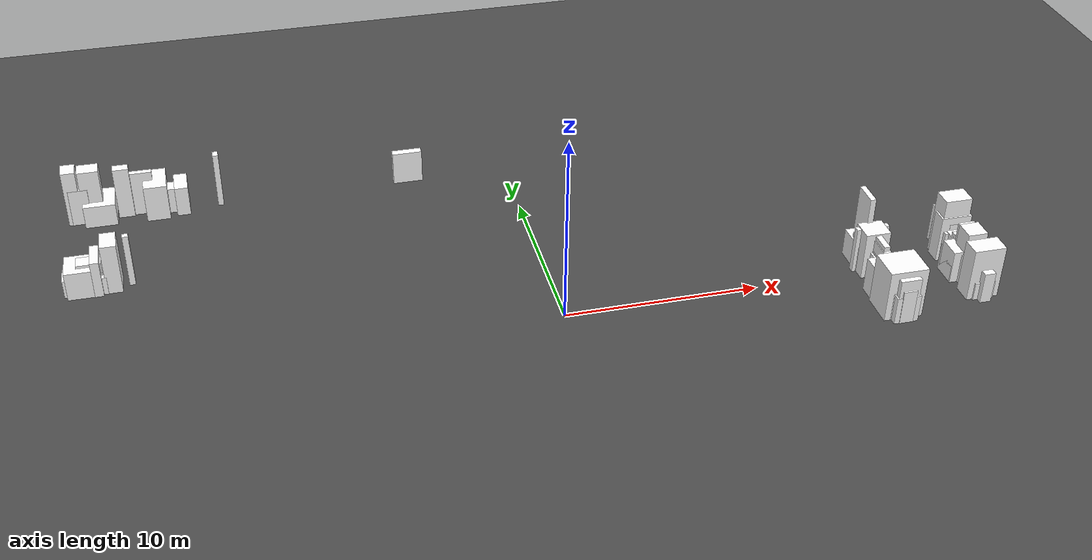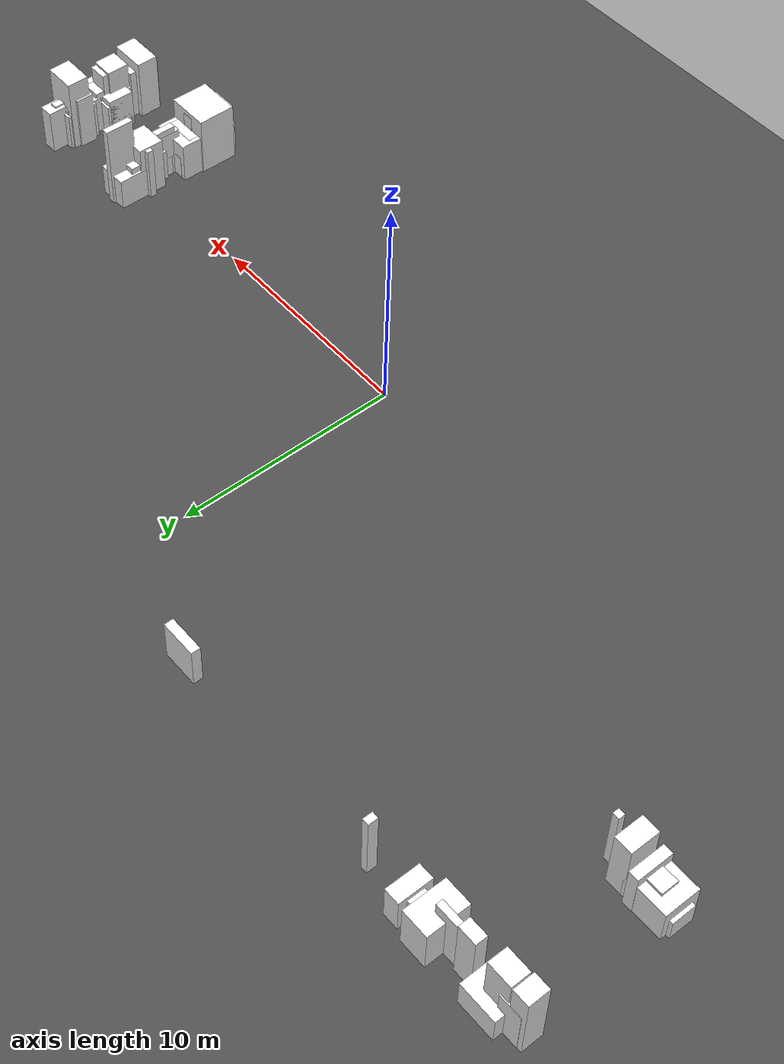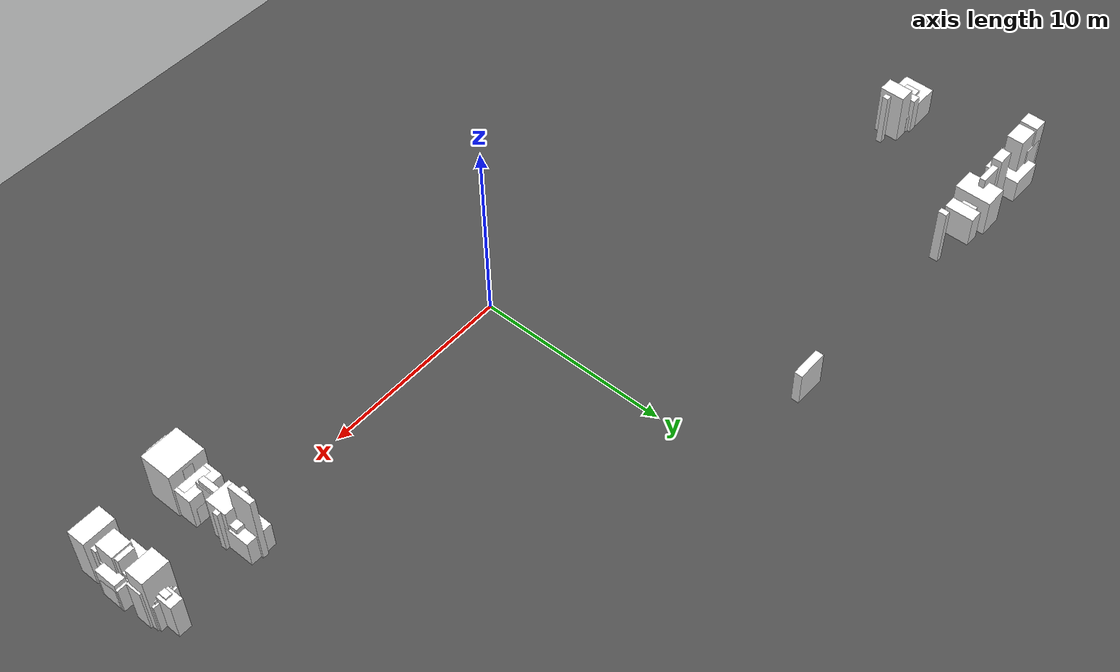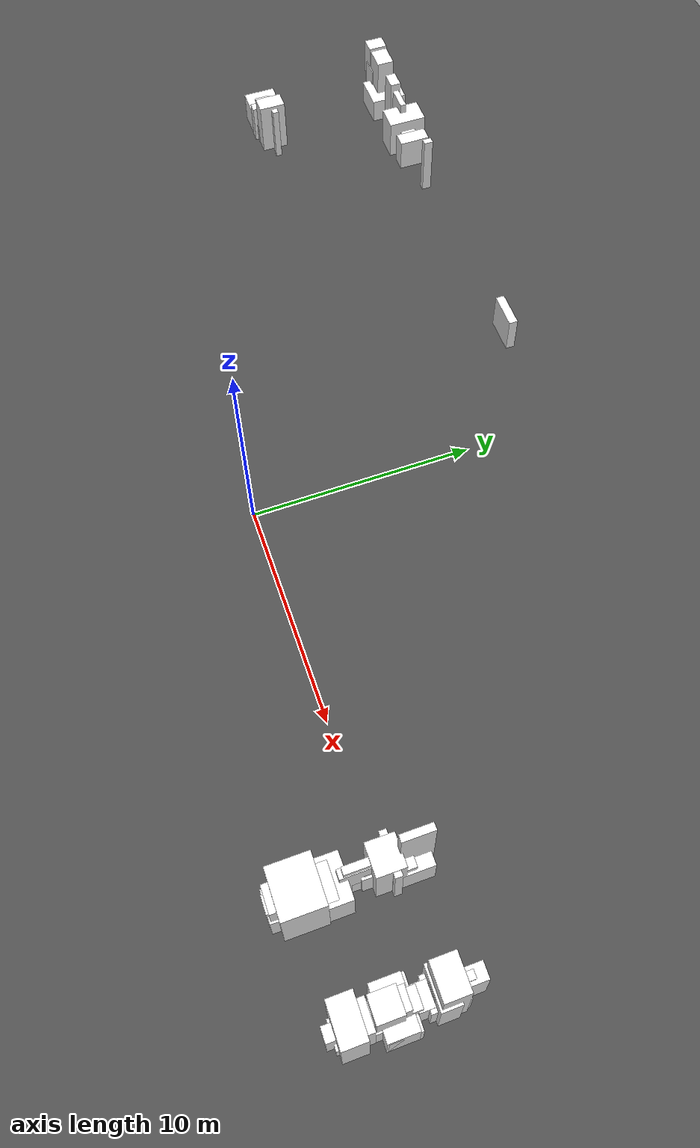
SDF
<sdf version="1.6">
 <world name="mirror_edge_world">
  <model name="ground_plane">
   <static>true</static>
   <link name="link">
    <collision name="collision">
     <geometry><plane><normal>0 0 1</normal><size>100 100</size></plane></geometry>
    </collision>
    <visual name="visual">
     <geometry><plane><normal>0 0 1</normal><size>100 100</size></plane></geometry>
     <material>
      <ambient>0.3 0.3 0.3 1</ambient>
      <diffuse>0.3 0.3 0.3 1</diffuse>
      <specular>0.5 0.5 0.5 1</specular>
      <emissive>0 0 0 1</emissive>
     </material>
    </visual>
   </link>
  </model>
  <model name="roadside_block_11_23_0">
   <static>true</static>
   <link name="link">
    <pose>16.21858560166542 -3.8042721957990326 1.2354776710088258 0 0 0</pose>
    <collision name="collision">
     <geometry><box><size>1.0804383255346321 0.9380740299507447 2.4709553420176515</size></box></geometry>
    </collision>
    <visual name="visual">
     <geometry><box><size>1.0804383255346321 0.9380740299507447 2.4709553420176515</size></box></geometry>
     <material>
      <ambient>1 1 1 1</ambient>
      <diffuse>1 1 1 1</diffuse>
      <specular>0.9 0.9 0.9 1</specular>
      <emissive>0.05 0.05 0.05 1</emissive>
     </material>
    </visual>
   </link>
  </model>
  <model name="roadside_block_11_24_0">
   <static>true</static>
   <link name="link">
    <pose>16.21858560166542 -3.7070666390946427 0.7494849608326297 0 0 0</pose>
    <collision name="collision">
     <geometry><box><size>1.2566096805619216 1.253627408943936 1.4989699216652594</size></box></geometry>
    </collision>
    <visual name="visual">
     <geometry><box><size>1.2566096805619216 1.253627408943936 1.4989699216652594</size></box></geometry>
     <material>
      <ambient>1 1 1 1</ambient>
      <diffuse>1 1 1 1</diffuse>
      <specular>0.9 0.9 0.9 1</specular>
      <emissive>0.05 0.05 0.05 1</emissive>
     </material>
    </visual>
   </link>
  </model>
  <model name="roadside_block_11_25_0">
   <static>true</static>
   <link name="link">
    <pose>16.21858560166542 -3.609861082390253 0.7923605078581774 0 0 0</pose>
    <collision name="collision">
     <geometry><box><size>1.357067128507238 0.7862899323994181 1.5847210157163547</size></box></geometry>
    </collision>
    <visual name="visual">
     <geometry><box><size>1.357067128507238 0.7862899323994181 1.5847210157163547</size></box></geometry>
     <material>
      <ambient>1 1 1 1</ambient>
      <diffuse>1 1 1 1</diffuse>
      <specular>0.9 0.9 0.9 1</specular>
      <emissive>0.05 0.05 0.05 1</emissive>
     </material>
    </visual>
   </link>
  </model>
  <model name="roadside_block_11_26_0">
   <static>true</static>
   <link name="link">
    <pose>16.21858560166542 -3.512655525685863 0.8416492146611939 0 0 0</pose>
    <collision name="collision">
     <geometry><box><size>0.6471163709494483 1.6538316001988216 1.6832984293223878</size></box></geometry>
    </collision>
    <visual name="visual">
     <geometry><box><size>0.6471163709494483 1.6538316001988216 1.6832984293223878</size></box></geometry>
     <material>
      <ambient>1 1 1 1</ambient>
      <diffuse>1 1 1 1</diffuse>
      <specular>0.9 0.9 0.9 1</specular>
      <emissive>0.05 0.05 0.05 1</emissive>
     </material>
    </visual>
   </link>
  </model>
  <model name="roadside_block_11_27_0">
   <static>true</static>
   <link name="link">
    <pose>16.21858560166542 -3.415449968981473 0.9345182304723844 0 0 0</pose>
    <collision name="collision">
     <geometry><box><size>0.7109434330954669 1.898828719705134 1.8690364609447687</size></box></geometry>
    </collision>
    <visual name="visual">
     <geometry><box><size>0.7109434330954669 1.898828719705134 1.8690364609447687</size></box></geometry>
     <material>
      <ambient>1 1 1 1</ambient>
      <diffuse>1 1 1 1</diffuse>
      <specular>0.9 0.9 0.9 1</specular>
      <emissive>0.05 0.05 0.05 1</emissive>
     </material>
    </visual>
   </link>
  </model>
  <model name="roadside_block_11_28_0">
   <static>true</static>
   <link name="link">
    <pose>20.818585601665422 -3.318244412277083 0.8557772017597238 0 0 0</pose>
    <collision name="collision">
     <geometry><box><size>0.5839366781183123 0.7733767131175638 1.7115544035194477</size></box></geometry>
    </collision>
    <visual name="visual">
     <geometry><box><size>0.5839366781183123 0.7733767131175638 1.7115544035194477</size></box></geometry>
     <material>
      <ambient>1 1 1 1</ambient>
      <diffuse>1 1 1 1</diffuse>
      <specular>0.9 0.9 0.9 1</specular>
      <emissive>0.05 0.05 0.05 1</emissive>
     </material>
    </visual>
   </link>
  </model>
  <model name="roadside_block_11_29_0">
   <static>true</static>
   <link name="link">
    <pose>16.21858560166542 -3.221038855572693 1.14578692937689 0 0 0</pose>
    <collision name="collision">
     <geometry><box><size>0.4324780692162977 0.4307867368732228 2.29157385875378</size></box></geometry>
    </collision>
    <visual name="visual">
     <geometry><box><size>0.4324780692162977 0.4307867368732228 2.29157385875378</size></box></geometry>
     <material>
      <ambient>1 1 1 1</ambient>
      <diffuse>1 1 1 1</diffuse>
      <specular>0.9 0.9 0.9 1</specular>
      <emissive>0.05 0.05 0.05 1</emissive>
     </material>
    </visual>
   </link>
  </model>
  <model name="roadside_block_11_30_0">
   <static>true</static>
   <link name="link">
    <pose>16.21858560166542 -3.1238332988683033 1.4040914641877587 0 0 0</pose>
    <collision name="collision">
     <geometry><box><size>2.0 1.7403846856171477 2.8081829283755173</size></box></geometry>
    </collision>
    <visual name="visual">
     <geometry><box><size>2.0 1.7403846856171477 2.8081829283755173</size></box></geometry>
     <material>
      <ambient>1 1 1 1</ambient>
      <diffuse>1 1 1 1</diffuse>
      <specular>0.9 0.9 0.9 1</specular>
      <emissive>0.05 0.05 0.05 1</emissive>
     </material>
    </visual>
   </link>
  </model>
  <model name="roadside_block_11_31_0">
   <static>true</static>
   <link name="link">
    <pose>16.21858560166542 -3.0266277421639134 0.7959984089615233 0 0 0</pose>
    <collision name="collision">
     <geometry><box><size>1.1524202615355628 1.7941158594726343 1.5919968179230466</size></box></geometry>
    </collision>
    <visual name="visual">
     <geometry><box><size>1.1524202615355628 1.7941158594726343 1.5919968179230466</size></box></geometry>
     <material>
      <ambient>1 1 1 1</ambient>
      <diffuse>1 1 1 1</diffuse>
      <specular>0.9 0.9 0.9 1</specular>
      <emissive>0.05 0.05 0.05 1</emissive>
     </material>
    </visual>
   </link>
  </model>
  <model name="roadside_block_11_32_0">
   <static>true</static>
   <link name="link">
    <pose>16.21858560166542 -2.9294221854595235 1.1548726224185946 0 0 0</pose>
    <collision name="collision">
     <geometry><box><size>0.3059989469436297 1.2173495158369434 2.309745244837189</size></box></geometry>
    </collision>
    <visual name="visual">
     <geometry><box><size>0.3059989469436297 1.2173495158369434 2.309745244837189</size></box></geometry>
     <material>
      <ambient>1 1 1 1</ambient>
      <diffuse>1 1 1 1</diffuse>
      <specular>0.9 0.9 0.9 1</specular>
      <emissive>0.05 0.05 0.05 1</emissive>
     </material>
    </visual>
   </link>
  </model>
  <model name="roadside_block_11_33_0">
   <static>true</static>
   <link name="link">
    <pose>20.818585601665422 -2.832216628755134 1.456429944601567 0 0 0</pose>
    <collision name="collision">
     <geometry><box><size>1.6827832994069434 0.9974993261907543 2.912859889203134</size></box></geometry>
    </collision>
    <visual name="visual">
     <geometry><box><size>1.6827832994069434 0.9974993261907543 2.912859889203134</size></box></geometry>
     <material>
      <ambient>1 1 1 1</ambient>
      <diffuse>1 1 1 1</diffuse>
      <specular>0.9 0.9 0.9 1</specular>
      <emissive>0.05 0.05 0.05 1</emissive>
     </material>
    </visual>
   </link>
  </model>
  <model name="roadside_block_11_34_0">
   <static>true</static>
   <link name="link">
    <pose>16.21858560166542 -2.735011072050744 1.2875831252718668 0 0 0</pose>
    <collision name="collision">
     <geometry><box><size>0.5504219417117358 0.972650114655825 2.5751662505437336</size></box></geometry>
    </collision>
    <visual name="visual">
     <geometry><box><size>0.5504219417117358 0.972650114655825 2.5751662505437336</size></box></geometry>
     <material>
      <ambient>1 1 1 1</ambient>
      <diffuse>1 1 1 1</diffuse>
      <specular>0.9 0.9 0.9 1</specular>
      <emissive>0.05 0.05 0.05 1</emissive>
     </material>
    </visual>
   </link>
  </model>
  <model name="roadside_block_11_35_0">
   <static>true</static>
   <link name="link">
    <pose>16.21858560166542 -2.637805515346354 0.6414252218439767 0 0 0</pose>
    <collision name="collision">
     <geometry><box><size>1.0966459840155058 1.1041415224890834 1.2828504436879533</size></box></geometry>
    </collision>
    <visual name="visual">
     <geometry><box><size>1.0966459840155058 1.1041415224890834 1.2828504436879533</size></box></geometry>
     <material>
      <ambient>1 1 1 1</ambient>
      <diffuse>1 1 1 1</diffuse>
      <specular>0.9 0.9 0.9 1</specular>
      <emissive>0.05 0.05 0.05 1</emissive>
     </material>
    </visual>
   </link>
  </model>
  <model name="roadside_block_11_36_0">
   <static>true</static>
   <link name="link">
    <pose>20.818585601665422 -2.5405999586419643 0.5 0 0 0</pose>
    <collision name="collision">
     <geometry><box><size>1.074506328080978 1.7734732638131128 1.0</size></box></geometry>
    </collision>
    <visual name="visual">
     <geometry><box><size>1.074506328080978 1.7734732638131128 1.0</size></box></geometry>
     <material>
      <ambient>1 1 1 1</ambient>
      <diffuse>1 1 1 1</diffuse>
      <specular>0.9 0.9 0.9 1</specular>
      <emissive>0.05 0.05 0.05 1</emissive>
     </material>
    </visual>
   </link>
  </model>
  <model name="roadside_block_11_37_0">
   <static>true</static>
   <link name="link">
    <pose>20.818585601665422 -2.4433944019375744 1.20310707098343 0 0 0</pose>
    <collision name="collision">
     <geometry><box><size>1.1962393467710064 0.8310265019209189 2.40621414196686</size></box></geometry>
    </collision>
    <visual name="visual">
     <geometry><box><size>1.1962393467710064 0.8310265019209189 2.40621414196686</size></box></geometry>
     <material>
      <ambient>1 1 1 1</ambient>
      <diffuse>1 1 1 1</diffuse>
      <specular>0.9 0.9 0.9 1</specular>
      <emissive>0.05 0.05 0.05 1</emissive>
     </material>
    </visual>
   </link>
  </model>
  <model name="roadside_block_11_38_0">
   <static>true</static>
   <link name="link">
    <pose>16.21858560166542 -2.3461888452331845 0.9445315884453709 0 0 0</pose>
    <collision name="collision">
     <geometry><box><size>1.4565003997006298 1.1285316262642253 1.8890631768907418</size></box></geometry>
    </collision>
    <visual name="visual">
     <geometry><box><size>1.4565003997006298 1.1285316262642253 1.8890631768907418</size></box></geometry>
     <material>
      <ambient>1 1 1 1</ambient>
      <diffuse>1 1 1 1</diffuse>
      <specular>0.9 0.9 0.9 1</specular>
      <emissive>0.05 0.05 0.05 1</emissive>
     </material>
    </visual>
   </link>
  </model>
  <model name="roadside_block_11_39_0">
   <static>true</static>
   <link name="link">
    <pose>16.21858560166542 -2.248983288528795 0.8008220165084177 0 0 0</pose>
    <collision name="collision">
     <geometry><box><size>1.0167351022014934 0.7252951615972039 1.6016440330168353</size></box></geometry>
    </collision>
    <visual name="visual">
     <geometry><box><size>1.0167351022014934 0.7252951615972039 1.6016440330168353</size></box></geometry>
     <material>
      <ambient>1 1 1 1</ambient>
      <diffuse>1 1 1 1</diffuse>
      <specular>0.9 0.9 0.9 1</specular>
      <emissive>0.05 0.05 0.05 1</emissive>
     </material>
    </visual>
   </link>
  </model>
  <model name="roadside_block_11_40_0">
   <static>true</static>
   <link name="link">
    <pose>20.818585601665422 -2.151777731824405 0.8291200903262613 0 0 0</pose>
    <collision name="collision">
     <geometry><box><size>1.1757893355211606 1.3252862159198375 1.6582401806525227</size></box></geometry>
    </collision>
    <visual name="visual">
     <geometry><box><size>1.1757893355211606 1.3252862159198375 1.6582401806525227</size></box></geometry>
     <material>
      <ambient>1 1 1 1</ambient>
      <diffuse>1 1 1 1</diffuse>
      <specular>0.9 0.9 0.9 1</specular>
      <emissive>0.05 0.05 0.05 1</emissive>
     </material>
    </visual>
   </link>
  </model>
  <model name="roadside_block_11_41_0">
   <static>true</static>
   <link name="link">
    <pose>16.21858560166542 -2.054572175120015 0.6288880494072719 0 0 0</pose>
    <collision name="collision">
     <geometry><box><size>1.361621135339547 1.5076984740565007 1.2577760988145439</size></box></geometry>
    </collision>
    <visual name="visual">
     <geometry><box><size>1.361621135339547 1.5076984740565007 1.2577760988145439</size></box></geometry>
     <material>
      <ambient>1 1 1 1</ambient>
      <diffuse>1 1 1 1</diffuse>
      <specular>0.9 0.9 0.9 1</specular>
      <emissive>0.05 0.05 0.05 1</emissive>
     </material>
    </visual>
   </link>
  </model>
  <model name="roadside_block_11_42_0">
   <static>true</static>
   <link name="link">
    <pose>16.21858560166542 -1.9573666184156249 0.5 0 0 0</pose>
    <collision name="collision">
     <geometry><box><size>1.5401907840674078 1.2464003070418586 1.0</size></box></geometry>
    </collision>
    <visual name="visual">
     <geometry><box><size>1.5401907840674078 1.2464003070418586 1.0</size></box></geometry>
     <material>
      <ambient>1 1 1 1</ambient>
      <diffuse>1 1 1 1</diffuse>
      <specular>0.9 0.9 0.9 1</specular>
      <emissive>0.05 0.05 0.05 1</emissive>
     </material>
    </visual>
   </link>
  </model>
  <model name="roadside_block_11_43_0">
   <static>true</static>
   <link name="link">
    <pose>16.21858560166542 -1.860161061711235 0.9433256060887353 0 0 0</pose>
    <collision name="collision">
     <geometry><box><size>1.8419199502368446 1.148775214889941 1.8866512121774706</size></box></geometry>
    </collision>
    <visual name="visual">
     <geometry><box><size>1.8419199502368446 1.148775214889941 1.8866512121774706</size></box></geometry>
     <material>
      <ambient>1 1 1 1</ambient>
      <diffuse>1 1 1 1</diffuse>
      <specular>0.9 0.9 0.9 1</specular>
      <emissive>0.05 0.05 0.05 1</emissive>
     </material>
    </visual>
   </link>
  </model>
  <model name="roadside_block_11_44_0">
   <static>true</static>
   <link name="link">
    <pose>16.21858560166542 -1.762955505006845 0.7001681256782317 0 0 0</pose>
    <collision name="collision">
     <geometry><box><size>1.4101555077290373 0.34521073572125605 1.4003362513564634</size></box></geometry>
    </collision>
    <visual name="visual">
     <geometry><box><size>1.4101555077290373 0.34521073572125605 1.4003362513564634</size></box></geometry>
     <material>
      <ambient>1 1 1 1</ambient>
      <diffuse>1 1 1 1</diffuse>
      <specular>0.9 0.9 0.9 1</specular>
      <emissive>0.05 0.05 0.05 1</emissive>
     </material>
    </visual>
   </link>
  </model>
  <model name="roadside_block_11_45_0">
   <static>true</static>
   <link name="link">
    <pose>20.818585601665422 -1.6657499483024552 1.1940528141234268 0 0 0</pose>
    <collision name="collision">
     <geometry><box><size>0.7845501736091486 1.1325581068450046 2.3881056282468536</size></box></geometry>
    </collision>
    <visual name="visual">
     <geometry><box><size>0.7845501736091486 1.1325581068450046 2.3881056282468536</size></box></geometry>
     <material>
      <ambient>1 1 1 1</ambient>
      <diffuse>1 1 1 1</diffuse>
      <specular>0.9 0.9 0.9 1</specular>
      <emissive>0.05 0.05 0.05 1</emissive>
     </material>
    </visual>
   </link>
  </model>
  <model name="roadside_block_11_46_0">
   <static>true</static>
   <link name="link">
    <pose>16.21858560166542 -1.5685443915980652 0.5499318706216594 0 0 0</pose>
    <collision name="collision">
     <geometry><box><size>1.3853635678319103 0.5794063809413218 1.0998637412433188</size></box></geometry>
    </collision>
    <visual name="visual">
     <geometry><box><size>1.3853635678319103 0.5794063809413218 1.0998637412433188</size></box></geometry>
     <material>
      <ambient>1 1 1 1</ambient>
      <diffuse>1 1 1 1</diffuse>
      <specular>0.9 0.9 0.9 1</specular>
      <emissive>0.05 0.05 0.05 1</emissive>
     </material>
    </visual>
   </link>
  </model>
  <model name="roadside_block_11_47_0">
   <static>true</static>
   <link name="link">
    <pose>20.818585601665422 -1.4713388348936753 1.474028276307581 0 0 0</pose>
    <collision name="collision">
     <geometry><box><size>1.0306009427699054 1.044322299443246 2.948056552615162</size></box></geometry>
    </collision>
    <visual name="visual">
     <geometry><box><size>1.0306009427699054 1.044322299443246 2.948056552615162</size></box></geometry>
     <material>
      <ambient>1 1 1 1</ambient>
      <diffuse>1 1 1 1</diffuse>
      <specular>0.9 0.9 0.9 1</specular>
      <emissive>0.05 0.05 0.05 1</emissive>
     </material>
    </visual>
   </link>
  </model>
  <model name="roadside_block_11_48_0">
   <static>true</static>
   <link name="link">
    <pose>20.818585601665422 -1.3741332781892854 1.2104525801692927 0 0 0</pose>
    <collision name="collision">
     <geometry><box><size>0.9467513110616417 0.45638956339080616 2.4209051603385854</size></box></geometry>
    </collision>
    <visual name="visual">
     <geometry><box><size>0.9467513110616417 0.45638956339080616 2.4209051603385854</size></box></geometry>
     <material>
      <ambient>1 1 1 1</ambient>
      <diffuse>1 1 1 1</diffuse>
      <specular>0.9 0.9 0.9 1</specular>
      <emissive>0.05 0.05 0.05 1</emissive>
     </material>
    </visual>
   </link>
  </model>
  <model name="roadside_block_11_49_0">
   <static>true</static>
   <link name="link">
    <pose>20.818585601665422 -1.2769277214848955 1.4229457023785301 0 0 0</pose>
    <collision name="collision">
     <geometry><box><size>0.8698458738253947 1.1780018850447032 2.8458914047570603</size></box></geometry>
    </collision>
    <visual name="visual">
     <geometry><box><size>0.8698458738253947 1.1780018850447032 2.8458914047570603</size></box></geometry>
     <material>
      <ambient>1 1 1 1</ambient>
      <diffuse>1 1 1 1</diffuse>
      <specular>0.9 0.9 0.9 1</specular>
      <emissive>0.05 0.05 0.05 1</emissive>
     </material>
    </visual>
   </link>
  </model>
  <model name="roadside_block_11_50_0">
   <static>true</static>
   <link name="link">
    <pose>20.818585601665422 -1.1797221647805056 0.9009633119171858 0 0 0</pose>
    <collision name="collision">
     <geometry><box><size>2.0 1.214876194302211 1.8019266238343716</size></box></geometry>
    </collision>
    <visual name="visual">
     <geometry><box><size>2.0 1.214876194302211 1.8019266238343716</size></box></geometry>
     <material>
      <ambient>1 1 1 1</ambient>
      <diffuse>1 1 1 1</diffuse>
      <specular>0.9 0.9 0.9 1</specular>
      <emissive>0.05 0.05 0.05 1</emissive>
     </material>
    </visual>
   </link>
  </model>
  <model name="roadside_block_11_51_0">
   <static>true</static>
   <link name="link">
    <pose>20.818585601665422 -1.0825166080761157 0.7681147475246617 0 0 0</pose>
    <collision name="collision">
     <geometry><box><size>2.0 1.258964932109746 1.5362294950493234</size></box></geometry>
    </collision>
    <visual name="visual">
     <geometry><box><size>2.0 1.258964932109746 1.5362294950493234</size></box></geometry>
     <material>
      <ambient>1 1 1 1</ambient>
      <diffuse>1 1 1 1</diffuse>
      <specular>0.9 0.9 0.9 1</specular>
      <emissive>0.05 0.05 0.05 1</emissive>
     </material>
    </visual>
   </link>
  </model>
  <model name="roadside_block_11_52_0">
   <static>true</static>
   <link name="link">
    <pose>16.21858560166542 -0.9853110513717258 1.1343824983017283 0 0 0</pose>
    <collision name="collision">
     <geometry><box><size>0.38752254493946636 1.2564450880429117 2.2687649966034567</size></box></geometry>
    </collision>
    <visual name="visual">
     <geometry><box><size>0.38752254493946636 1.2564450880429117 2.2687649966034567</size></box></geometry>
     <material>
      <ambient>1 1 1 1</ambient>
      <diffuse>1 1 1 1</diffuse>
      <specular>0.9 0.9 0.9 1</specular>
      <emissive>0.05 0.05 0.05 1</emissive>
     </material>
    </visual>
   </link>
  </model>
  <model name="roadside_block_11_53_0">
   <static>true</static>
   <link name="link">
    <pose>16.21858560166542 -0.8881054946673359 1.2608820504628435 0 0 0</pose>
    <collision name="collision">
     <geometry><box><size>0.31506646615079703 1.0971406775773689 2.521764100925687</size></box></geometry>
    </collision>
    <visual name="visual">
     <geometry><box><size>0.31506646615079703 1.0971406775773689 2.521764100925687</size></box></geometry>
     <material>
      <ambient>1 1 1 1</ambient>
      <diffuse>1 1 1 1</diffuse>
      <specular>0.9 0.9 0.9 1</specular>
      <emissive>0.05 0.05 0.05 1</emissive>
     </material>
    </visual>
   </link>
  </model>
  <model name="roadside_block_11_54_0">
   <static>true</static>
   <link name="link">
    <pose>20.818585601665422 -0.790899937962946 1.0202642540902345 0 0 0</pose>
    <collision name="collision">
     <geometry><box><size>0.8398503556246228 1.0336615999307308 2.040528508180469</size></box></geometry>
    </collision>
    <visual name="visual">
     <geometry><box><size>0.8398503556246228 1.0336615999307308 2.040528508180469</size></box></geometry>
     <material>
      <ambient>1 1 1 1</ambient>
      <diffuse>1 1 1 1</diffuse>
      <specular>0.9 0.9 0.9 1</specular>
      <emissive>0.05 0.05 0.05 1</emissive>
     </material>
    </visual>
   </link>
  </model>
  <model name="roadside_block_11_55_0">
   <static>true</static>
   <link name="link">
    <pose>20.818585601665422 -0.6936943812585561 0.5 0 0 0</pose>
    <collision name="collision">
     <geometry><box><size>1.1065928170085766 0.4679383696940187 1.0</size></box></geometry>
    </collision>
    <visual name="visual">
     <geometry><box><size>1.1065928170085766 0.4679383696940187 1.0</size></box></geometry>
     <material>
      <ambient>1 1 1 1</ambient>
      <diffuse>1 1 1 1</diffuse>
      <specular>0.9 0.9 0.9 1</specular>
      <emissive>0.05 0.05 0.05 1</emissive>
     </material>
    </visual>
   </link>
  </model>
  <model name="roadside_block_11_56_0">
   <static>true</static>
   <link name="link">
    <pose>20.818585601665422 -0.5964888245541662 0.6788591452873509 0 0 0</pose>
    <collision name="collision">
     <geometry><box><size>0.6368093129406546 1.2910140063408388 1.3577182905747018</size></box></geometry>
    </collision>
    <visual name="visual">
     <geometry><box><size>0.6368093129406546 1.2910140063408388 1.3577182905747018</size></box></geometry>
     <material>
      <ambient>1 1 1 1</ambient>
      <diffuse>1 1 1 1</diffuse>
      <specular>0.9 0.9 0.9 1</specular>
      <emissive>0.05 0.05 0.05 1</emissive>
     </material>
    </visual>
   </link>
  </model>
  <model name="roadside_block_11_57_0">
   <static>true</static>
   <link name="link">
    <pose>16.21858560166542 -0.4992832678497763 0.5 0 0 0</pose>
    <collision name="collision">
     <geometry><box><size>0.43042650844551167 1.3239174162525633 1.0</size></box></geometry>
    </collision>
    <visual name="visual">
     <geometry><box><size>0.43042650844551167 1.3239174162525633 1.0</size></box></geometry>
     <material>
      <ambient>1 1 1 1</ambient>
      <diffuse>1 1 1 1</diffuse>
      <specular>0.9 0.9 0.9 1</specular>
      <emissive>0.05 0.05 0.05 1</emissive>
     </material>
    </visual>
   </link>
  </model>
  <model name="roadside_block_11_58_0">
   <static>true</static>
   <link name="link">
    <pose>16.21858560166542 -0.4020777111453864 0.7590815441983862 0 0 0</pose>
    <collision name="collision">
     <geometry><box><size>0.6257365097982756 0.8234516915402699 1.5181630883967725</size></box></geometry>
    </collision>
    <visual name="visual">
     <geometry><box><size>0.6257365097982756 0.8234516915402699 1.5181630883967725</size></box></geometry>
     <material>
      <ambient>1 1 1 1</ambient>
      <diffuse>1 1 1 1</diffuse>
      <specular>0.9 0.9 0.9 1</specular>
      <emissive>0.05 0.05 0.05 1</emissive>
     </material>
    </visual>
   </link>
  </model>
  <model name="roadside_block_11_59_0">
   <static>true</static>
   <link name="link">
    <pose>16.21858560166542 -0.30487215444099647 0.8156813411455033 0 0 0</pose>
    <collision name="collision">
     <geometry><box><size>0.4194312847417263 0.7509415455575364 1.6313626822910066</size></box></geometry>
    </collision>
    <visual name="visual">
     <geometry><box><size>0.4194312847417263 0.7509415455575364 1.6313626822910066</size></box></geometry>
     <material>
      <ambient>1 1 1 1</ambient>
      <diffuse>1 1 1 1</diffuse>
      <specular>0.9 0.9 0.9 1</specular>
      <emissive>0.05 0.05 0.05 1</emissive>
     </material>
    </visual>
   </link>
  </model>
  <model name="roadside_block_11_61_0">
   <static>true</static>
   <link name="link">
    <pose>16.21858560166542 -0.11046104103221666 1.2011314143291347 0 0 0</pose>
    <collision name="collision">
     <geometry><box><size>1.1049553720451875 0.32027173291392586 2.4022628286582695</size></box></geometry>
    </collision>
    <visual name="visual">
     <geometry><box><size>1.1049553720451875 0.32027173291392586 2.4022628286582695</size></box></geometry>
     <material>
      <ambient>1 1 1 1</ambient>
      <diffuse>1 1 1 1</diffuse>
      <specular>0.9 0.9 0.9 1</specular>
      <emissive>0.05 0.05 0.05 1</emissive>
     </material>
    </visual>
   </link>
  </model>
  <model name="roadside_block_11_63_0">
   <static>true</static>
   <link name="link">
    <pose>20.818585601665422 0.08395007237656316 0.9069502766455304 0 0 0</pose>
    <collision name="collision">
     <geometry><box><size>0.955844604685822 1.079599583906166 1.8139005532910608</size></box></geometry>
    </collision>
    <visual name="visual">
     <geometry><box><size>0.955844604685822 1.079599583906166 1.8139005532910608</size></box></geometry>
     <material>
      <ambient>1 1 1 1</ambient>
      <diffuse>1 1 1 1</diffuse>
      <specular>0.9 0.9 0.9 1</specular>
      <emissive>0.05 0.05 0.05 1</emissive>
     </material>
    </visual>
   </link>
  </model>
  <model name="roadside_block_11_64_0">
   <static>true</static>
   <link name="link">
    <pose>16.21858560166542 0.18115562908095306 1.3021638064930712 0 0 0</pose>
    <collision name="collision">
     <geometry><box><size>1.3160044120019492 1.1815423875015443 2.6043276129861423</size></box></geometry>
    </collision>
    <visual name="visual">
     <geometry><box><size>1.3160044120019492 1.1815423875015443 2.6043276129861423</size></box></geometry>
     <material>
      <ambient>1 1 1 1</ambient>
      <diffuse>1 1 1 1</diffuse>
      <specular>0.9 0.9 0.9 1</specular>
      <emissive>0.05 0.05 0.05 1</emissive>
     </material>
    </visual>
   </link>
  </model>
  <model name="roadside_block_11_65_0">
   <static>true</static>
   <link name="link">
    <pose>16.21858560166542 0.2783611857853421 0.9336595567416552 0 0 0</pose>
    <collision name="collision">
     <geometry><box><size>0.3 0.8043654714000956 1.8673191134833105</size></box></geometry>
    </collision>
    <visual name="visual">
     <geometry><box><size>0.3 0.8043654714000956 1.8673191134833105</size></box></geometry>
     <material>
      <ambient>1 1 1 1</ambient>
      <diffuse>1 1 1 1</diffuse>
      <specular>0.9 0.9 0.9 1</specular>
      <emissive>0.05 0.05 0.05 1</emissive>
     </material>
    </visual>
   </link>
  </model>
  <model name="roadside_block_11_66_0">
   <static>true</static>
   <link name="link">
    <pose>16.21858560166542 0.375566742489732 1.2767226141278485 0 0 0</pose>
    <collision name="collision">
     <geometry><box><size>1.7457121884745082 0.3 2.553445228255697</size></box></geometry>
    </collision>
    <visual name="visual">
     <geometry><box><size>1.7457121884745082 0.3 2.553445228255697</size></box></geometry>
     <material>
      <ambient>1 1 1 1</ambient>
      <diffuse>1 1 1 1</diffuse>
      <specular>0.9 0.9 0.9 1</specular>
      <emissive>0.05 0.05 0.05 1</emissive>
     </material>
    </visual>
   </link>
  </model>
  <model name="roadside_block_11_68_0">
   <static>true</static>
   <link name="link">
    <pose>20.818585601665422 0.5699778558985118 1.2835881037445593 0 0 0</pose>
    <collision name="collision">
     <geometry><box><size>1.6349404695969623 0.8179685326841102 2.5671762074891187</size></box></geometry>
    </collision>
    <visual name="visual">
     <geometry><box><size>1.6349404695969623 0.8179685326841102 2.5671762074891187</size></box></geometry>
     <material>
      <ambient>1 1 1 1</ambient>
      <diffuse>1 1 1 1</diffuse>
      <specular>0.9 0.9 0.9 1</specular>
      <emissive>0.05 0.05 0.05 1</emissive>
     </material>
    </visual>
   </link>
  </model>
  <model name="roadside_block_11_69_0">
   <static>true</static>
   <link name="link">
    <pose>20.818585601665422 0.6671834126029017 0.8887245839790763 0 0 0</pose>
    <collision name="collision">
     <geometry><box><size>1.2973061995187647 1.4856134811828343 1.7774491679581526</size></box></geometry>
    </collision>
    <visual name="visual">
     <geometry><box><size>1.2973061995187647 1.4856134811828343 1.7774491679581526</size></box></geometry>
     <material>
      <ambient>1 1 1 1</ambient>
      <diffuse>1 1 1 1</diffuse>
      <specular>0.9 0.9 0.9 1</specular>
      <emissive>0.05 0.05 0.05 1</emissive>
     </material>
    </visual>
   </link>
  </model>
  <model name="roadside_block_11_70_0">
   <static>true</static>
   <link name="link">
    <pose>20.818585601665422 0.7643889693072916 1.7713288382147159 0 0 0</pose>
    <collision name="collision">
     <geometry><box><size>1.4340648657903954 1.0272509199889823 3.5426576764294317</size></box></geometry>
    </collision>
    <visual name="visual">
     <geometry><box><size>1.4340648657903954 1.0272509199889823 3.5426576764294317</size></box></geometry>
     <material>
      <ambient>1 1 1 1</ambient>
      <diffuse>1 1 1 1</diffuse>
      <specular>0.9 0.9 0.9 1</specular>
      <emissive>0.05 0.05 0.05 1</emissive>
     </material>
    </visual>
   </link>
  </model>
  <model name="roadside_block_11_71_0">
   <static>true</static>
   <link name="link">
    <pose>16.21858560166542 0.8615945260116815 0.8913398000662193 0 0 0</pose>
    <collision name="collision">
     <geometry><box><size>1.1560198875459444 0.6722310811427981 1.7826796001324385</size></box></geometry>
    </collision>
    <visual name="visual">
     <geometry><box><size>1.1560198875459444 0.6722310811427981 1.7826796001324385</size></box></geometry>
     <material>
      <ambient>1 1 1 1</ambient>
      <diffuse>1 1 1 1</diffuse>
      <specular>0.9 0.9 0.9 1</specular>
      <emissive>0.05 0.05 0.05 1</emissive>
     </material>
    </visual>
   </link>
  </model>
  <model name="roadside_block_11_72_0">
   <static>true</static>
   <link name="link">
    <pose>20.818585601665422 0.9588000827160714 0.9757204784784276 0 0 0</pose>
    <collision name="collision">
     <geometry><box><size>0.956266630867723 0.7200342496897435 1.9514409569568552</size></box></geometry>
    </collision>
    <visual name="visual">
     <geometry><box><size>0.956266630867723 0.7200342496897435 1.9514409569568552</size></box></geometry>
     <material>
      <ambient>1 1 1 1</ambient>
      <diffuse>1 1 1 1</diffuse>
      <specular>0.9 0.9 0.9 1</specular>
      <emissive>0.05 0.05 0.05 1</emissive>
     </material>
    </visual>
   </link>
  </model>
  <model name="roadside_block_11_73_0">
   <static>true</static>
   <link name="link">
    <pose>16.21858560166542 1.0560056394204613 0.7489279440512299 0 0 0</pose>
    <collision name="collision">
     <geometry><box><size>1.3720931225657185 1.671064296398359 1.4978558881024597</size></box></geometry>
    </collision>
    <visual name="visual">
     <geometry><box><size>1.3720931225657185 1.671064296398359 1.4978558881024597</size></box></geometry>
     <material>
      <ambient>1 1 1 1</ambient>
      <diffuse>1 1 1 1</diffuse>
      <specular>0.9 0.9 0.9 1</specular>
      <emissive>0.05 0.05 0.05 1</emissive>
     </material>
    </visual>
   </link>
  </model>
  <model name="roadside_block_11_74_0">
   <static>true</static>
   <link name="link">
    <pose>20.818585601665422 1.1532111961248512 1.0723606689665597 0 0 0</pose>
    <collision name="collision">
     <geometry><box><size>0.6564186512125905 2.0 2.1447213379331194</size></box></geometry>
    </collision>
    <visual name="visual">
     <geometry><box><size>0.6564186512125905 2.0 2.1447213379331194</size></box></geometry>
     <material>
      <ambient>1 1 1 1</ambient>
      <diffuse>1 1 1 1</diffuse>
      <specular>0.9 0.9 0.9 1</specular>
      <emissive>0.05 0.05 0.05 1</emissive>
     </material>
    </visual>
   </link>
  </model>
  <model name="roadside_block_11_75_0">
   <static>true</static>
   <link name="link">
    <pose>20.818585601665422 1.2504167528292411 1.1161934612292521 0 0 0</pose>
    <collision name="collision">
     <geometry><box><size>0.338798843456662 0.9421566652583171 2.2323869224585042</size></box></geometry>
    </collision>
    <visual name="visual">
     <geometry><box><size>0.338798843456662 0.9421566652583171 2.2323869224585042</size></box></geometry>
     <material>
      <ambient>1 1 1 1</ambient>
      <diffuse>1 1 1 1</diffuse>
      <specular>0.9 0.9 0.9 1</specular>
      <emissive>0.05 0.05 0.05 1</emissive>
     </material>
    </visual>
   </link>
  </model>
  <model name="roadside_block_11_76_0">
   <static>true</static>
   <link name="link">
    <pose>16.21858560166542 1.347622309533631 1.9953646436473402 0 0 0</pose>
    <collision name="collision">
     <geometry><box><size>0.3 1.320590482030325 3.9907292872946805</size></box></geometry>
    </collision>
    <visual name="visual">
     <geometry><box><size>0.3 1.320590482030325 3.9907292872946805</size></box></geometry>
     <material>
      <ambient>1 1 1 1</ambient>
      <diffuse>1 1 1 1</diffuse>
      <specular>0.9 0.9 0.9 1</specular>
      <emissive>0.05 0.05 0.05 1</emissive>
     </material>
    </visual>
   </link>
  </model>
  <model name="roadside_block_12_5_0">
   <static>true</static>
   <link name="link">
    <pose>-23.495211770798317 7.586421523255507 0.5 0 0 0</pose>
    <collision name="collision">
     <geometry><box><size>1.459330837982733 1.0765147085961946 1.0</size></box></geometry>
    </collision>
    <visual name="visual">
     <geometry><box><size>1.459330837982733 1.0765147085961946 1.0</size></box></geometry>
     <material>
      <ambient>1 1 1 1</ambient>
      <diffuse>1 1 1 1</diffuse>
      <specular>0.9 0.9 0.9 1</specular>
      <emissive>0.05 0.05 0.05 1</emissive>
     </material>
    </visual>
   </link>
  </model>
  <model name="roadside_block_12_6_0">
   <static>true</static>
   <link name="link">
    <pose>-23.38505412495798 7.586421523255507 0.7878965938312608 0 0 0</pose>
    <collision name="collision">
     <geometry><box><size>1.357422525383527 1.5868311508308477 1.5757931876625215</size></box></geometry>
    </collision>
    <visual name="visual">
     <geometry><box><size>1.357422525383527 1.5868311508308477 1.5757931876625215</size></box></geometry>
     <material>
      <ambient>1 1 1 1</ambient>
      <diffuse>1 1 1 1</diffuse>
      <specular>0.9 0.9 0.9 1</specular>
      <emissive>0.05 0.05 0.05 1</emissive>
     </material>
    </visual>
   </link>
  </model>
  <model name="roadside_block_12_11_0">
   <static>true</static>
   <link name="link">
    <pose>-22.834265895756296 7.586421523255507 0.8596566547225452 0 0 0</pose>
    <collision name="collision">
     <geometry><box><size>1.243570438678405 0.7613217961878684 1.7193133094450903</size></box></geometry>
    </collision>
    <visual name="visual">
     <geometry><box><size>1.243570438678405 0.7613217961878684 1.7193133094450903</size></box></geometry>
     <material>
      <ambient>1 1 1 1</ambient>
      <diffuse>1 1 1 1</diffuse>
      <specular>0.9 0.9 0.9 1</specular>
      <emissive>0.05 0.05 0.05 1</emissive>
     </material>
    </visual>
   </link>
  </model>
  <model name="roadside_block_12_14_0">
   <static>true</static>
   <link name="link">
    <pose>-22.503792958235287 7.586421523255507 1.0246062046800186 0 0 0</pose>
    <collision name="collision">
     <geometry><box><size>0.449629038418772 1.6194477921345507 2.0492124093600372</size></box></geometry>
    </collision>
    <visual name="visual">
     <geometry><box><size>0.449629038418772 1.6194477921345507 2.0492124093600372</size></box></geometry>
     <material>
      <ambient>1 1 1 1</ambient>
      <diffuse>1 1 1 1</diffuse>
      <specular>0.9 0.9 0.9 1</specular>
      <emissive>0.05 0.05 0.05 1</emissive>
     </material>
    </visual>
   </link>
  </model>
  <model name="roadside_block_12_15_0">
   <static>true</static>
   <link name="link">
    <pose>-22.393635312394952 7.586421523255507 0.7481725113589546 0 0 0</pose>
    <collision name="collision">
     <geometry><box><size>1.4745779721608567 0.7480021912808994 1.4963450227179091</size></box></geometry>
    </collision>
    <visual name="visual">
     <geometry><box><size>1.4745779721608567 0.7480021912808994 1.4963450227179091</size></box></geometry>
     <material>
      <ambient>1 1 1 1</ambient>
      <diffuse>1 1 1 1</diffuse>
      <specular>0.9 0.9 0.9 1</specular>
      <emissive>0.05 0.05 0.05 1</emissive>
     </material>
    </visual>
   </link>
  </model>
  <model name="roadside_block_12_16_0">
   <static>true</static>
   <link name="link">
    <pose>-22.283477666554614 7.586421523255507 0.5 0 0 0</pose>
    <collision name="collision">
     <geometry><box><size>0.47574303012581587 1.3298032450616455 1.0</size></box></geometry>
    </collision>
    <visual name="visual">
     <geometry><box><size>0.47574303012581587 1.3298032450616455 1.0</size></box></geometry>
     <material>
      <ambient>1 1 1 1</ambient>
      <diffuse>1 1 1 1</diffuse>
      <specular>0.9 0.9 0.9 1</specular>
      <emissive>0.05 0.05 0.05 1</emissive>
     </material>
    </visual>
   </link>
  </model>
  <model name="roadside_block_12_17_0">
   <static>true</static>
   <link name="link">
    <pose>-22.17332002071428 7.586421523255507 0.5 0 0 0</pose>
    <collision name="collision">
     <geometry><box><size>0.7015942460795814 0.5254252629710627 1.0</size></box></geometry>
    </collision>
    <visual name="visual">
     <geometry><box><size>0.7015942460795814 0.5254252629710627 1.0</size></box></geometry>
     <material>
      <ambient>1 1 1 1</ambient>
      <diffuse>1 1 1 1</diffuse>
      <specular>0.9 0.9 0.9 1</specular>
      <emissive>0.05 0.05 0.05 1</emissive>
     </material>
    </visual>
   </link>
  </model>
  <model name="roadside_block_12_18_0">
   <static>true</static>
   <link name="link">
    <pose>-22.06316237487394 7.586421523255507 0.5279685935675669 0 0 0</pose>
    <collision name="collision">
     <geometry><box><size>0.33322476259581457 0.5627159872988099 1.0559371871351337</size></box></geometry>
    </collision>
    <visual name="visual">
     <geometry><box><size>0.33322476259581457 0.5627159872988099 1.0559371871351337</size></box></geometry>
     <material>
      <ambient>1 1 1 1</ambient>
      <diffuse>1 1 1 1</diffuse>
      <specular>0.9 0.9 0.9 1</specular>
      <emissive>0.05 0.05 0.05 1</emissive>
     </material>
    </visual>
   </link>
  </model>
  <model name="roadside_block_12_21_0">
   <static>true</static>
   <link name="link">
    <pose>-21.73268943735293 7.586421523255507 1.411031266441013 0 0 0</pose>
    <collision name="collision">
     <geometry><box><size>0.8130068265040482 1.3050370158539795 2.822062532882026</size></box></geometry>
    </collision>
    <visual name="visual">
     <geometry><box><size>0.8130068265040482 1.3050370158539795 2.822062532882026</size></box></geometry>
     <material>
      <ambient>1 1 1 1</ambient>
      <diffuse>1 1 1 1</diffuse>
      <specular>0.9 0.9 0.9 1</specular>
      <emissive>0.05 0.05 0.05 1</emissive>
     </material>
    </visual>
   </link>
  </model>
  <model name="roadside_block_12_29_0">
   <static>true</static>
   <link name="link">
    <pose>-20.851428270630237 7.586421523255507 1.4796849797479088 0 0 0</pose>
    <collision name="collision">
     <geometry><box><size>0.3 0.3 2.9593699594958176</size></box></geometry>
    </collision>
    <visual name="visual">
     <geometry><box><size>0.3 0.3 2.9593699594958176</size></box></geometry>
     <material>
      <ambient>1 1 1 1</ambient>
      <diffuse>1 1 1 1</diffuse>
      <specular>0.9 0.9 0.9 1</specular>
      <emissive>0.05 0.05 0.05 1</emissive>
     </material>
    </visual>
   </link>
  </model>
  <model name="roadside_block_13_1_0">
   <static>true</static>
   <link name="link">
    <pose>-23.70926804483399 14.118915843824936 1.629718970002665 0 0 0</pose>
    <collision name="collision">
     <geometry><box><size>0.7438642302192642 0.9361896485197572 3.25943794000533</size></box></geometry>
    </collision>
    <visual name="visual">
     <geometry><box><size>0.7438642302192642 0.9361896485197572 3.25943794000533</size></box></geometry>
     <material>
      <ambient>1 1 1 1</ambient>
      <diffuse>1 1 1 1</diffuse>
      <specular>0.9 0.9 0.9 1</specular>
      <emissive>0.05 0.05 0.05 1</emissive>
     </material>
    </visual>
   </link>
  </model>
  <model name="roadside_block_13_2_0">
   <static>true</static>
   <link name="link">
    <pose>-23.37253608966798 14.118915843824936 1.0620156919443804 0 0 0</pose>
    <collision name="collision">
     <geometry><box><size>1.0221995779781006 0.9666829671416317 2.124031383888761</size></box></geometry>
    </collision>
    <visual name="visual">
     <geometry><box><size>1.0221995779781006 0.9666829671416317 2.124031383888761</size></box></geometry>
     <material>
      <ambient>1 1 1 1</ambient>
      <diffuse>1 1 1 1</diffuse>
      <specular>0.9 0.9 0.9 1</specular>
      <emissive>0.05 0.05 0.05 1</emissive>
     </material>
    </visual>
   </link>
  </model>
  <model name="roadside_block_13_4_0">
   <static>true</static>
   <link name="link">
    <pose>-22.699072179335964 14.118915843824936 1.5867390598637 0 0 0</pose>
    <collision name="collision">
     <geometry><box><size>1.116554689347268 0.8593316598829719 3.1734781197274</size></box></geometry>
    </collision>
    <visual name="visual">
     <geometry><box><size>1.116554689347268 0.8593316598829719 3.1734781197274</size></box></geometry>
     <material>
      <ambient>1 1 1 1</ambient>
      <diffuse>1 1 1 1</diffuse>
      <specular>0.9 0.9 0.9 1</specular>
      <emissive>0.05 0.05 0.05 1</emissive>
     </material>
    </visual>
   </link>
  </model>
  <model name="roadside_block_13_5_0">
   <static>true</static>
   <link name="link">
    <pose>-22.362340224169955 14.118915843824936 0.6401753570537032 0 0 0</pose>
    <collision name="collision">
     <geometry><box><size>1.7071313385630695 1.8024128723646762 1.2803507141074064</size></box></geometry>
    </collision>
    <visual name="visual">
     <geometry><box><size>1.7071313385630695 1.8024128723646762 1.2803507141074064</size></box></geometry>
     <material>
      <ambient>1 1 1 1</ambient>
      <diffuse>1 1 1 1</diffuse>
      <specular>0.9 0.9 0.9 1</specular>
      <emissive>0.05 0.05 0.05 1</emissive>
     </material>
    </visual>
   </link>
  </model>
  <model name="roadside_block_13_9_0">
   <static>true</static>
   <link name="link">
    <pose>-21.01541240350592 14.118915843824936 1.498938966360511 0 0 0</pose>
    <collision name="collision">
     <geometry><box><size>0.8412386758247361 0.5250354831005767 2.997877932721022</size></box></geometry>
    </collision>
    <visual name="visual">
     <geometry><box><size>0.8412386758247361 0.5250354831005767 2.997877932721022</size></box></geometry>
     <material>
      <ambient>1 1 1 1</ambient>
      <diffuse>1 1 1 1</diffuse>
      <specular>0.9 0.9 0.9 1</specular>
      <emissive>0.05 0.05 0.05 1</emissive>
     </material>
    </visual>
   </link>
  </model>
  <model name="roadside_block_13_12_0">
   <static>true</static>
   <link name="link">
    <pose>-20.005216538007893 14.118915843824936 1.2956294893463707 0 0 0</pose>
    <collision name="collision">
     <geometry><box><size>1.159615497946239 0.3 2.5912589786927414</size></box></geometry>
    </collision>
    <visual name="visual">
     <geometry><box><size>1.159615497946239 0.3 2.5912589786927414</size></box></geometry>
     <material>
      <ambient>1 1 1 1</ambient>
      <diffuse>1 1 1 1</diffuse>
      <specular>0.9 0.9 0.9 1</specular>
      <emissive>0.05 0.05 0.05 1</emissive>
     </material>
    </visual>
   </link>
  </model>
  <model name="roadside_block_13_14_0">
   <static>true</static>
   <link name="link">
    <pose>-19.331752627675876 14.118915843824936 1.0374747444924883 0 0 0</pose>
    <collision name="collision">
     <geometry><box><size>1.2357694163128916 1.8997886862768913 2.0749494889849767</size></box></geometry>
    </collision>
    <visual name="visual">
     <geometry><box><size>1.2357694163128916 1.8997886862768913 2.0749494889849767</size></box></geometry>
     <material>
      <ambient>1 1 1 1</ambient>
      <diffuse>1 1 1 1</diffuse>
      <specular>0.9 0.9 0.9 1</specular>
      <emissive>0.05 0.05 0.05 1</emissive>
     </material>
    </visual>
   </link>
  </model>
  <model name="roadside_block_13_15_0">
   <static>true</static>
   <link name="link">
    <pose>-18.995020672509867 14.118915843824936 0.7440084445337927 0 0 0</pose>
    <collision name="collision">
     <geometry><box><size>1.8233620804122244 0.7577138557916651 1.4880168890675853</size></box></geometry>
    </collision>
    <visual name="visual">
     <geometry><box><size>1.8233620804122244 0.7577138557916651 1.4880168890675853</size></box></geometry>
     <material>
      <ambient>1 1 1 1</ambient>
      <diffuse>1 1 1 1</diffuse>
      <specular>0.9 0.9 0.9 1</specular>
      <emissive>0.05 0.05 0.05 1</emissive>
     </material>
    </visual>
   </link>
  </model>
  <model name="roadside_block_13_18_0">
   <static>true</static>
   <link name="link">
    <pose>-17.98482480701184 14.118915843824936 0.849678277513364 0 0 0</pose>
    <collision name="collision">
     <geometry><box><size>0.7102187173463334 1.5179930890962972 1.699356555026728</size></box></geometry>
    </collision>
    <visual name="visual">
     <geometry><box><size>0.7102187173463334 1.5179930890962972 1.699356555026728</size></box></geometry>
     <material>
      <ambient>1 1 1 1</ambient>
      <diffuse>1 1 1 1</diffuse>
      <specular>0.9 0.9 0.9 1</specular>
      <emissive>0.05 0.05 0.05 1</emissive>
     </material>
    </visual>
   </link>
  </model>
  <model name="roadside_block_13_24_0">
   <static>true</static>
   <link name="link">
    <pose>-15.964433076015785 14.118915843824936 1.584535589004754 0 0 0</pose>
    <collision name="collision">
     <geometry><box><size>0.3 0.4433784904749153 3.169071178009508</size></box></geometry>
    </collision>
    <visual name="visual">
     <geometry><box><size>0.3 0.4433784904749153 3.169071178009508</size></box></geometry>
     <material>
      <ambient>1 1 1 1</ambient>
      <diffuse>1 1 1 1</diffuse>
      <specular>0.9 0.9 0.9 1</specular>
      <emissive>0.05 0.05 0.05 1</emissive>
     </material>
    </visual>
   </link>
  </model>
  <model name="roadside_block_13_55_0">
   <static>true</static>
   <link name="link">
    <pose>-5.525742465869509 14.118915843824936 0.9399002499922535 0 0 0</pose>
    <collision name="collision">
     <geometry><box><size>1.6314743218184424 0.4137077795386209 1.879800499984507</size></box></geometry>
    </collision>
    <visual name="visual">
     <geometry><box><size>1.6314743218184424 0.4137077795386209 1.879800499984507</size></box></geometry>
     <material>
      <ambient>1 1 1 1</ambient>
      <diffuse>1 1 1 1</diffuse>
      <specular>0.9 0.9 0.9 1</specular>
      <emissive>0.05 0.05 0.05 1</emissive>
     </material>
    </visual>
   </link>
  </model>
 </world>
</sdf>
